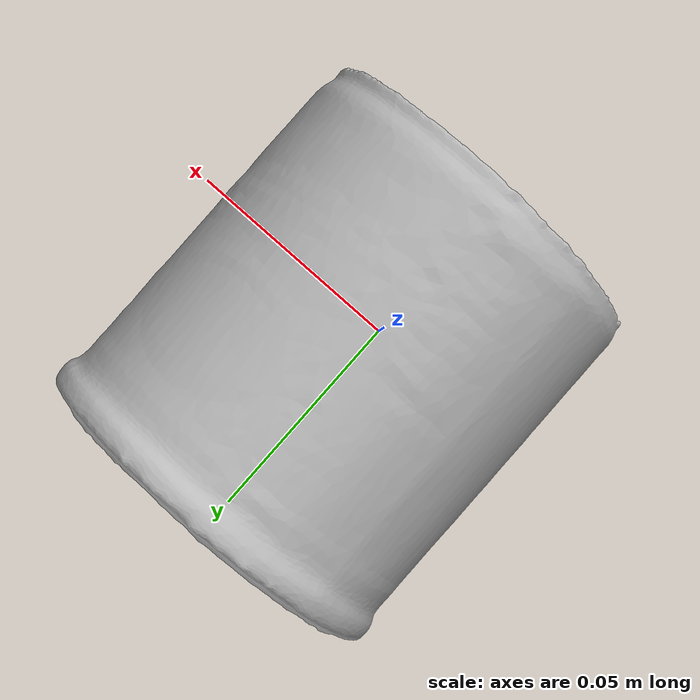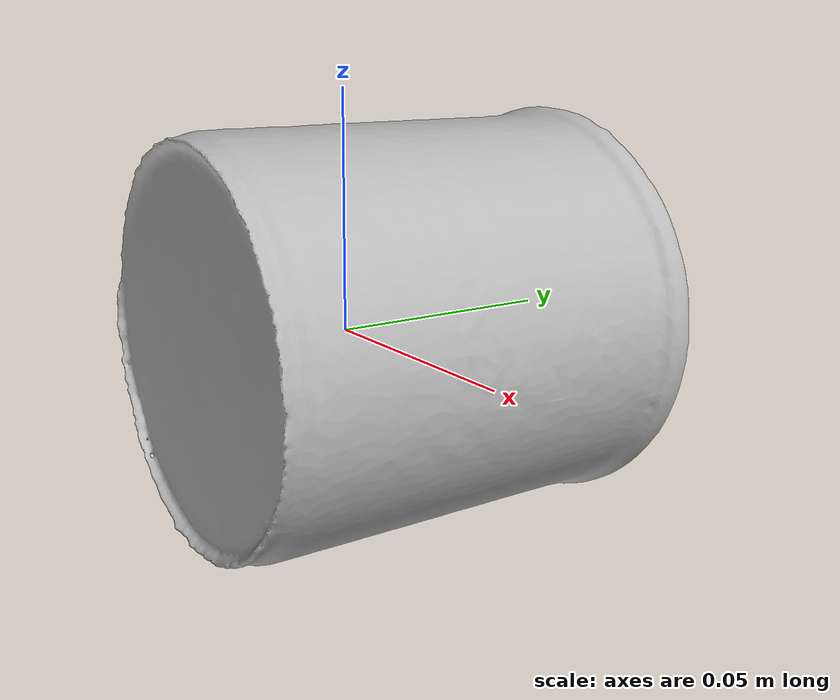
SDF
<?xml version='1.0'?>
<sdf version="1.4">
  <model name="Peanuts">
    <static>false</static>
    <link name="link">
      <inertial>
        <pose>0.002635333432764344 0.0097965586156739 0.0008301355599949388 -1.5851601749612305 -0.767215844785364 -3.1227758864713695</pose>
        <mass>0.03297187948606206</mass>
        <inertia>
          <ixx>6.14512845930046e-05</ixx>
          <ixy>1.0407779564648011e-20</ixy>
          <ixz>-2.6410783480386373e-23</ixz>
          <iyy>6.140677794582338e-05</iyy>
          <iyz>-1.1418569070414398e-21</iyz>
          <izz>4.842474438399794e-05</izz>
        </inertia>
      </inertial>
      <collision name="collision">
        <geometry>
          <mesh>
            <!-- Use a downsampled mesh for collisions -->
            <uri>model:///Peanuts/Peanuts_250_collision.obj</uri>
	        </mesh>
        </geometry>
        <surface>
      </surface>
      </collision>
      <visual name="visual">
        <geometry>
          <mesh>
            <uri>model:///Peanuts/Peanuts_25k_tex.obj</uri>
	        </mesh>
        </geometry>
        <material>
          <script>
            <uri>model:///Peanuts/Peanuts.material</uri>
            <name>Peanuts</name>
          </script>
        </material>
      </visual>
    </link>
  </model>
</sdf>
